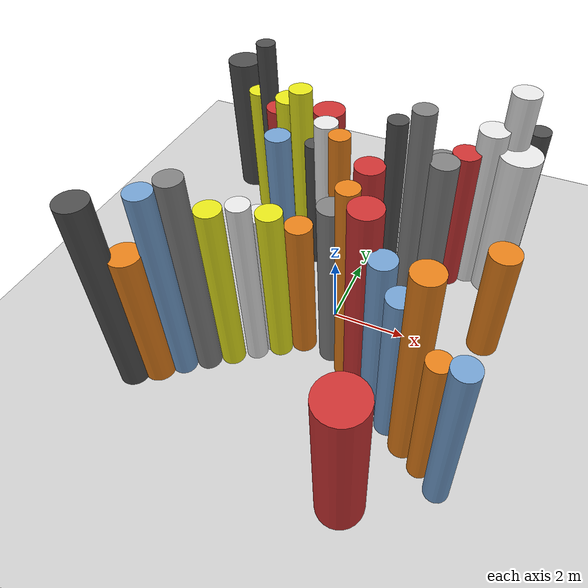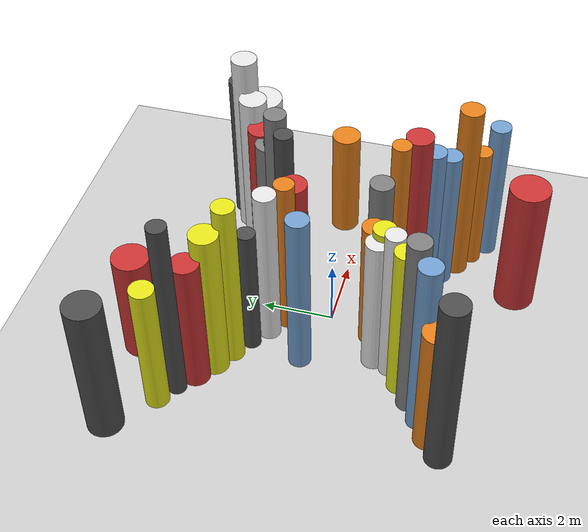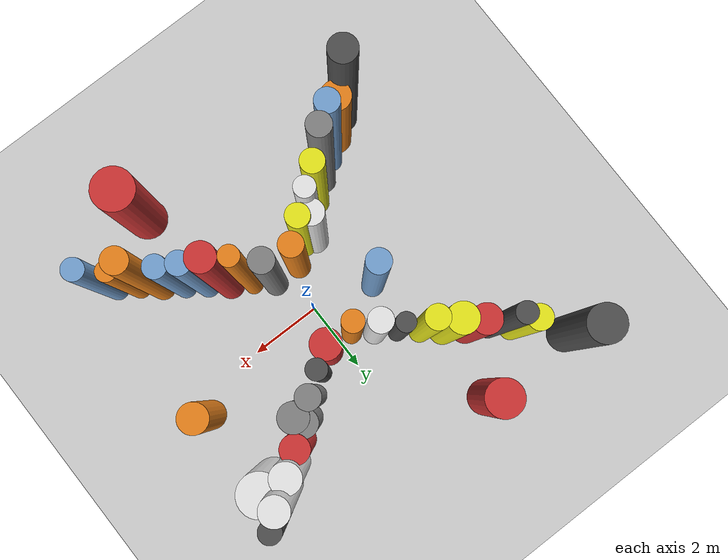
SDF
<?xml version='1.0'?>
<sdf version='1.6'>
  <world name='routeA_rl_v1__dense_recovery__rl_train__bottleneck_corridor__000071'>
    <!-- Sun light -->
    <light name='sun' type='directional'>
      <cast_shadows>1</cast_shadows>
      <pose>0 0 10 0 0 0</pose>
      <diffuse>0.8 0.8 0.8 1</diffuse>
      <specular>0.2 0.2 0.2 1</specular>
      <attenuation>
        <range>1000</range>
        <constant>0.9</constant>
        <linear>0.01</linear>
        <quadratic>0.001</quadratic>
      </attenuation>
      <direction>-0.5 0.1 -0.9</direction>
    </light>

    <!-- Ground plane -->
    <model name='ground_plane'>
      <static>1</static>
      <link name='link'>
        <collision name='collision'>
          <geometry>
            <plane>
              <normal>0 0 1</normal>
              <size>100 100</size>
            </plane>
          </geometry>
          <surface>
            <contact>
              <collide_bitmask>65535</collide_bitmask>
              <ode/>
            </contact>
            <friction>
              <ode>
                <mu>100</mu>
                <mu2>50</mu2>
              </ode>
              <torsional><ode/></torsional>
            </friction>
            <bounce/>
          </surface>
          <max_contacts>10</max_contacts>
        </collision>
        <visual name='visual'>
          <cast_shadows>0</cast_shadows>
          <geometry>
            <plane>
              <normal>0 0 1</normal>
              <size>100 100</size>
            </plane>
          </geometry>
          <material>
            <script>
              <uri>file://media/materials/scripts/gazebo.material</uri>
              <n>Gazebo/Grey</n>
            </script>
          </material>
        </visual>
      </link>
    </model>

    <!-- Environment -->
    <magnetic_field>6e-06 2.3e-05 -4.2e-05</magnetic_field>
    <atmosphere type='adiabatic'/>
    <physics name='default_physics' default='0' type='ode'>
      <gravity>0 0 -9.8</gravity>
      <max_step_size>0.004</max_step_size>
      <real_time_factor>1</real_time_factor>
      <real_time_update_rate>250</real_time_update_rate>
    </physics>
    <scene>
      <ambient>0.4 0.4 0.4 1</ambient>
      <background>0.7 0.7 0.7 1</background>
      <shadows>1</shadows>
    </scene>
    <wind/>
    <spherical_coordinates>
      <surface_model>EARTH_WGS84</surface_model>
      <latitude_deg>0</latitude_deg>
      <longitude_deg>0</longitude_deg>
      <elevation>0</elevation>
      <heading_deg>0</heading_deg>
    </spherical_coordinates>

    <!-- ============ OBSTACLES (40) ============ -->
    <model name='funnel_l_0'>
      <static>1</static>
      <link name='link'>
        <visual name='visual'>
          <geometry>
            <cylinder>
              <radius>0.3773</radius>
              <length>5.7128</length>
            </cylinder>
          </geometry>
          <material>
            <script>
              <n>Gazebo/DarkGrey</n>
              <uri>file://media/materials/scripts/gazebo.material</uri>
            </script>
            <ambient>0.3 0.3 0.3 1</ambient>
          </material>
        </visual>
        <collision name='collision'>
          <geometry>
            <cylinder>
              <radius>0.3773</radius>
              <length>5.7128</length>
            </cylinder>
          </geometry>
          <max_contacts>10</max_contacts>
          <surface>
            <contact><ode/></contact>
            <bounce/>
            <friction>
              <ode><mu>1</mu><mu2>1</mu2></ode>
              <torsional><ode/></torsional>
            </friction>
          </surface>
        </collision>
      </link>
      <pose>-4.0000 -3.8000 2.8564 0 0 0.0000</pose>
    </model>

    <model name='funnel_r_0'>
      <static>1</static>
      <link name='link'>
        <visual name='visual'>
          <geometry>
            <cylinder>
              <radius>0.3300</radius>
              <length>4.2214</length>
            </cylinder>
          </geometry>
          <material>
            <script>
              <n>Gazebo/Yellow</n>
              <uri>file://media/materials/scripts/gazebo.material</uri>
            </script>
            <ambient>0.9 0.9 0.1 1</ambient>
          </material>
        </visual>
        <collision name='collision'>
          <geometry>
            <cylinder>
              <radius>0.3300</radius>
              <length>4.2214</length>
            </cylinder>
          </geometry>
          <max_contacts>10</max_contacts>
          <surface>
            <contact><ode/></contact>
            <bounce/>
            <friction>
              <ode><mu>1</mu><mu2>1</mu2></ode>
              <torsional><ode/></torsional>
            </friction>
          </surface>
        </collision>
      </link>
      <pose>-4.0000 3.8000 2.1107 0 0 0.0000</pose>
    </model>

    <model name='funnel_l_1'>
      <static>1</static>
      <link name='link'>
        <visual name='visual'>
          <geometry>
            <cylinder>
              <radius>0.3960</radius>
              <length>4.1325</length>
            </cylinder>
          </geometry>
          <material>
            <script>
              <n>Gazebo/Orange</n>
              <uri>file://media/materials/scripts/gazebo.material</uri>
            </script>
            <ambient>0.9 0.5 0.1 1</ambient>
          </material>
        </visual>
        <collision name='collision'>
          <geometry>
            <cylinder>
              <radius>0.3960</radius>
              <length>4.1325</length>
            </cylinder>
          </geometry>
          <max_contacts>10</max_contacts>
          <surface>
            <contact><ode/></contact>
            <bounce/>
            <friction>
              <ode><mu>1</mu><mu2>1</mu2></ode>
              <torsional><ode/></torsional>
            </friction>
          </surface>
        </collision>
      </link>
      <pose>-3.4857 -3.4286 2.0663 0 0 0.0000</pose>
    </model>

    <model name='funnel_r_1'>
      <static>1</static>
      <link name='link'>
        <visual name='visual'>
          <geometry>
            <cylinder>
              <radius>0.2645</radius>
              <length>5.9287</length>
            </cylinder>
          </geometry>
          <material>
            <script>
              <n>Gazebo/DarkGrey</n>
              <uri>file://media/materials/scripts/gazebo.material</uri>
            </script>
            <ambient>0.3 0.3 0.3 1</ambient>
          </material>
        </visual>
        <collision name='collision'>
          <geometry>
            <cylinder>
              <radius>0.2645</radius>
              <length>5.9287</length>
            </cylinder>
          </geometry>
          <max_contacts>10</max_contacts>
          <surface>
            <contact><ode/></contact>
            <bounce/>
            <friction>
              <ode><mu>1</mu><mu2>1</mu2></ode>
              <torsional><ode/></torsional>
            </friction>
          </surface>
        </collision>
      </link>
      <pose>-3.4857 3.4286 2.9644 0 0 0.0000</pose>
    </model>

    <model name='funnel_l_2'>
      <static>1</static>
      <link name='link'>
        <visual name='visual'>
          <geometry>
            <cylinder>
              <radius>0.3158</radius>
              <length>5.7339</length>
            </cylinder>
          </geometry>
          <material>
            <script>
              <n>Gazebo/Blue</n>
              <uri>file://media/materials/scripts/gazebo.material</uri>
            </script>
            <ambient>0.447 0.624 0.812 1</ambient>
          </material>
        </visual>
        <collision name='collision'>
          <geometry>
            <cylinder>
              <radius>0.3158</radius>
              <length>5.7339</length>
            </cylinder>
          </geometry>
          <max_contacts>10</max_contacts>
          <surface>
            <contact><ode/></contact>
            <bounce/>
            <friction>
              <ode><mu>1</mu><mu2>1</mu2></ode>
              <torsional><ode/></torsional>
            </friction>
          </surface>
        </collision>
      </link>
      <pose>-2.9714 -3.0571 2.8669 0 0 0.0000</pose>
    </model>

    <model name='funnel_r_2'>
      <static>1</static>
      <link name='link'>
        <visual name='visual'>
          <geometry>
            <cylinder>
              <radius>0.3901</radius>
              <length>4.3050</length>
            </cylinder>
          </geometry>
          <material>
            <script>
              <n>Gazebo/Red</n>
              <uri>file://media/materials/scripts/gazebo.material</uri>
            </script>
            <ambient>0.8 0.2 0.2 1</ambient>
          </material>
        </visual>
        <collision name='collision'>
          <geometry>
            <cylinder>
              <radius>0.3901</radius>
              <length>4.3050</length>
            </cylinder>
          </geometry>
          <max_contacts>10</max_contacts>
          <surface>
            <contact><ode/></contact>
            <bounce/>
            <friction>
              <ode><mu>1</mu><mu2>1</mu2></ode>
              <torsional><ode/></torsional>
            </friction>
          </surface>
        </collision>
      </link>
      <pose>-2.9714 3.0571 2.1525 0 0 0.0000</pose>
    </model>

    <model name='funnel_l_3'>
      <static>1</static>
      <link name='link'>
        <visual name='visual'>
          <geometry>
            <cylinder>
              <radius>0.3139</radius>
              <length>5.9533</length>
            </cylinder>
          </geometry>
          <material>
            <script>
              <n>Gazebo/Grey</n>
              <uri>file://media/materials/scripts/gazebo.material</uri>
            </script>
            <ambient>0.5 0.5 0.5 1</ambient>
          </material>
        </visual>
        <collision name='collision'>
          <geometry>
            <cylinder>
              <radius>0.3139</radius>
              <length>5.9533</length>
            </cylinder>
          </geometry>
          <max_contacts>10</max_contacts>
          <surface>
            <contact><ode/></contact>
            <bounce/>
            <friction>
              <ode><mu>1</mu><mu2>1</mu2></ode>
              <torsional><ode/></torsional>
            </friction>
          </surface>
        </collision>
      </link>
      <pose>-2.4571 -2.6857 2.9767 0 0 0.0000</pose>
    </model>

    <model name='funnel_r_3'>
      <static>1</static>
      <link name='link'>
        <visual name='visual'>
          <geometry>
            <cylinder>
              <radius>0.3934</radius>
              <length>4.9109</length>
            </cylinder>
          </geometry>
          <material>
            <script>
              <n>Gazebo/Yellow</n>
              <uri>file://media/materials/scripts/gazebo.material</uri>
            </script>
            <ambient>0.9 0.9 0.1 1</ambient>
          </material>
        </visual>
        <collision name='collision'>
          <geometry>
            <cylinder>
              <radius>0.3934</radius>
              <length>4.9109</length>
            </cylinder>
          </geometry>
          <max_contacts>10</max_contacts>
          <surface>
            <contact><ode/></contact>
            <bounce/>
            <friction>
              <ode><mu>1</mu><mu2>1</mu2></ode>
              <torsional><ode/></torsional>
            </friction>
          </surface>
        </collision>
      </link>
      <pose>-2.4571 2.6857 2.4554 0 0 0.0000</pose>
    </model>

    <model name='funnel_l_4'>
      <static>1</static>
      <link name='link'>
        <visual name='visual'>
          <geometry>
            <cylinder>
              <radius>0.3107</radius>
              <length>5.0453</length>
            </cylinder>
          </geometry>
          <material>
            <script>
              <n>Gazebo/Yellow</n>
              <uri>file://media/materials/scripts/gazebo.material</uri>
            </script>
            <ambient>0.9 0.9 0.1 1</ambient>
          </material>
        </visual>
        <collision name='collision'>
          <geometry>
            <cylinder>
              <radius>0.3107</radius>
              <length>5.0453</length>
            </cylinder>
          </geometry>
          <max_contacts>10</max_contacts>
          <surface>
            <contact><ode/></contact>
            <bounce/>
            <friction>
              <ode><mu>1</mu><mu2>1</mu2></ode>
              <torsional><ode/></torsional>
            </friction>
          </surface>
        </collision>
      </link>
      <pose>-1.9429 -2.3143 2.5226 0 0 0.0000</pose>
    </model>

    <model name='funnel_r_4'>
      <static>1</static>
      <link name='link'>
        <visual name='visual'>
          <geometry>
            <cylinder>
              <radius>0.3090</radius>
              <length>5.4643</length>
            </cylinder>
          </geometry>
          <material>
            <script>
              <n>Gazebo/Yellow</n>
              <uri>file://media/materials/scripts/gazebo.material</uri>
            </script>
            <ambient>0.9 0.9 0.1 1</ambient>
          </material>
        </visual>
        <collision name='collision'>
          <geometry>
            <cylinder>
              <radius>0.3090</radius>
              <length>5.4643</length>
            </cylinder>
          </geometry>
          <max_contacts>10</max_contacts>
          <surface>
            <contact><ode/></contact>
            <bounce/>
            <friction>
              <ode><mu>1</mu><mu2>1</mu2></ode>
              <torsional><ode/></torsional>
            </friction>
          </surface>
        </collision>
      </link>
      <pose>-1.9429 2.3143 2.7322 0 0 0.0000</pose>
    </model>

    <model name='funnel_l_5'>
      <static>1</static>
      <link name='link'>
        <visual name='visual'>
          <geometry>
            <cylinder>
              <radius>0.2766</radius>
              <length>5.0536</length>
            </cylinder>
          </geometry>
          <material>
            <script>
              <n>Gazebo/White</n>
              <uri>file://media/materials/scripts/gazebo.material</uri>
            </script>
            <ambient>0.9 0.9 0.9 1</ambient>
          </material>
        </visual>
        <collision name='collision'>
          <geometry>
            <cylinder>
              <radius>0.2766</radius>
              <length>5.0536</length>
            </cylinder>
          </geometry>
          <max_contacts>10</max_contacts>
          <surface>
            <contact><ode/></contact>
            <bounce/>
            <friction>
              <ode><mu>1</mu><mu2>1</mu2></ode>
              <torsional><ode/></torsional>
            </friction>
          </surface>
        </collision>
      </link>
      <pose>-1.4286 -1.9429 2.5268 0 0 0.0000</pose>
    </model>

    <model name='funnel_r_5'>
      <static>1</static>
      <link name='link'>
        <visual name='visual'>
          <geometry>
            <cylinder>
              <radius>0.2565</radius>
              <length>4.1747</length>
            </cylinder>
          </geometry>
          <material>
            <script>
              <n>Gazebo/DarkGrey</n>
              <uri>file://media/materials/scripts/gazebo.material</uri>
            </script>
            <ambient>0.3 0.3 0.3 1</ambient>
          </material>
        </visual>
        <collision name='collision'>
          <geometry>
            <cylinder>
              <radius>0.2565</radius>
              <length>4.1747</length>
            </cylinder>
          </geometry>
          <max_contacts>10</max_contacts>
          <surface>
            <contact><ode/></contact>
            <bounce/>
            <friction>
              <ode><mu>1</mu><mu2>1</mu2></ode>
              <torsional><ode/></torsional>
            </friction>
          </surface>
        </collision>
      </link>
      <pose>-1.4286 1.9429 2.0874 0 0 0.0000</pose>
    </model>

    <model name='funnel_l_6'>
      <static>1</static>
      <link name='link'>
        <visual name='visual'>
          <geometry>
            <cylinder>
              <radius>0.3117</radius>
              <length>4.7024</length>
            </cylinder>
          </geometry>
          <material>
            <script>
              <n>Gazebo/Yellow</n>
              <uri>file://media/materials/scripts/gazebo.material</uri>
            </script>
            <ambient>0.9 0.9 0.1 1</ambient>
          </material>
        </visual>
        <collision name='collision'>
          <geometry>
            <cylinder>
              <radius>0.3117</radius>
              <length>4.7024</length>
            </cylinder>
          </geometry>
          <max_contacts>10</max_contacts>
          <surface>
            <contact><ode/></contact>
            <bounce/>
            <friction>
              <ode><mu>1</mu><mu2>1</mu2></ode>
              <torsional><ode/></torsional>
            </friction>
          </surface>
        </collision>
      </link>
      <pose>-0.9143 -1.5714 2.3512 0 0 0.0000</pose>
    </model>

    <model name='funnel_r_6'>
      <static>1</static>
      <link name='link'>
        <visual name='visual'>
          <geometry>
            <cylinder>
              <radius>0.3139</radius>
              <length>5.1457</length>
            </cylinder>
          </geometry>
          <material>
            <script>
              <n>Gazebo/White</n>
              <uri>file://media/materials/scripts/gazebo.material</uri>
            </script>
            <ambient>0.9 0.9 0.9 1</ambient>
          </material>
        </visual>
        <collision name='collision'>
          <geometry>
            <cylinder>
              <radius>0.3139</radius>
              <length>5.1457</length>
            </cylinder>
          </geometry>
          <max_contacts>10</max_contacts>
          <surface>
            <contact><ode/></contact>
            <bounce/>
            <friction>
              <ode><mu>1</mu><mu2>1</mu2></ode>
              <torsional><ode/></torsional>
            </friction>
          </surface>
        </collision>
      </link>
      <pose>-0.9143 1.5714 2.5729 0 0 0.0000</pose>
    </model>

    <model name='funnel_l_7'>
      <static>1</static>
      <link name='link'>
        <visual name='visual'>
          <geometry>
            <cylinder>
              <radius>0.3278</radius>
              <length>4.2152</length>
            </cylinder>
          </geometry>
          <material>
            <script>
              <n>Gazebo/Orange</n>
              <uri>file://media/materials/scripts/gazebo.material</uri>
            </script>
            <ambient>0.9 0.5 0.1 1</ambient>
          </material>
        </visual>
        <collision name='collision'>
          <geometry>
            <cylinder>
              <radius>0.3278</radius>
              <length>4.2152</length>
            </cylinder>
          </geometry>
          <max_contacts>10</max_contacts>
          <surface>
            <contact><ode/></contact>
            <bounce/>
            <friction>
              <ode><mu>1</mu><mu2>1</mu2></ode>
              <torsional><ode/></torsional>
            </friction>
          </surface>
        </collision>
      </link>
      <pose>-0.4000 -1.2000 2.1076 0 0 0.0000</pose>
    </model>

    <model name='funnel_r_7'>
      <static>1</static>
      <link name='link'>
        <visual name='visual'>
          <geometry>
            <cylinder>
              <radius>0.2816</radius>
              <length>5.1369</length>
            </cylinder>
          </geometry>
          <material>
            <script>
              <n>Gazebo/Orange</n>
              <uri>file://media/materials/scripts/gazebo.material</uri>
            </script>
            <ambient>0.9 0.5 0.1 1</ambient>
          </material>
        </visual>
        <collision name='collision'>
          <geometry>
            <cylinder>
              <radius>0.2816</radius>
              <length>5.1369</length>
            </cylinder>
          </geometry>
          <max_contacts>10</max_contacts>
          <surface>
            <contact><ode/></contact>
            <bounce/>
            <friction>
              <ode><mu>1</mu><mu2>1</mu2></ode>
              <torsional><ode/></torsional>
            </friction>
          </surface>
        </collision>
      </link>
      <pose>-0.4000 1.2000 2.5685 0 0 0.0000</pose>
    </model>

    <model name='funnel_out_l_0'>
      <static>1</static>
      <link name='link'>
        <visual name='visual'>
          <geometry>
            <cylinder>
              <radius>0.3278</radius>
              <length>5.0183</length>
            </cylinder>
          </geometry>
          <material>
            <script>
              <n>Gazebo/Grey</n>
              <uri>file://media/materials/scripts/gazebo.material</uri>
            </script>
            <ambient>0.5 0.5 0.5 1</ambient>
          </material>
        </visual>
        <collision name='collision'>
          <geometry>
            <cylinder>
              <radius>0.3278</radius>
              <length>5.0183</length>
            </cylinder>
          </geometry>
          <max_contacts>10</max_contacts>
          <surface>
            <contact><ode/></contact>
            <bounce/>
            <friction>
              <ode><mu>1</mu><mu2>1</mu2></ode>
              <torsional><ode/></torsional>
            </friction>
          </surface>
        </collision>
      </link>
      <pose>0.4000 -1.2000 2.5092 0 0 0.0000</pose>
    </model>

    <model name='funnel_out_r_0'>
      <static>1</static>
      <link name='link'>
        <visual name='visual'>
          <geometry>
            <cylinder>
              <radius>0.3974</radius>
              <length>4.4600</length>
            </cylinder>
          </geometry>
          <material>
            <script>
              <n>Gazebo/Red</n>
              <uri>file://media/materials/scripts/gazebo.material</uri>
            </script>
            <ambient>0.8 0.2 0.2 1</ambient>
          </material>
        </visual>
        <collision name='collision'>
          <geometry>
            <cylinder>
              <radius>0.3974</radius>
              <length>4.4600</length>
            </cylinder>
          </geometry>
          <max_contacts>10</max_contacts>
          <surface>
            <contact><ode/></contact>
            <bounce/>
            <friction>
              <ode><mu>1</mu><mu2>1</mu2></ode>
              <torsional><ode/></torsional>
            </friction>
          </surface>
        </collision>
      </link>
      <pose>0.4000 1.2000 2.2300 0 0 0.0000</pose>
    </model>

    <model name='funnel_out_l_1'>
      <static>1</static>
      <link name='link'>
        <visual name='visual'>
          <geometry>
            <cylinder>
              <radius>0.2605</radius>
              <length>5.9333</length>
            </cylinder>
          </geometry>
          <material>
            <script>
              <n>Gazebo/Orange</n>
              <uri>file://media/materials/scripts/gazebo.material</uri>
            </script>
            <ambient>0.9 0.5 0.1 1</ambient>
          </material>
        </visual>
        <collision name='collision'>
          <geometry>
            <cylinder>
              <radius>0.2605</radius>
              <length>5.9333</length>
            </cylinder>
          </geometry>
          <max_contacts>10</max_contacts>
          <surface>
            <contact><ode/></contact>
            <bounce/>
            <friction>
              <ode><mu>1</mu><mu2>1</mu2></ode>
              <torsional><ode/></torsional>
            </friction>
          </surface>
        </collision>
      </link>
      <pose>0.9143 -1.5714 2.9666 0 0 0.0000</pose>
    </model>

    <model name='funnel_out_r_1'>
      <static>1</static>
      <link name='link'>
        <visual name='visual'>
          <geometry>
            <cylinder>
              <radius>0.2606</radius>
              <length>5.6619</length>
            </cylinder>
          </geometry>
          <material>
            <script>
              <n>Gazebo/DarkGrey</n>
              <uri>file://media/materials/scripts/gazebo.material</uri>
            </script>
            <ambient>0.3 0.3 0.3 1</ambient>
          </material>
        </visual>
        <collision name='collision'>
          <geometry>
            <cylinder>
              <radius>0.2606</radius>
              <length>5.6619</length>
            </cylinder>
          </geometry>
          <max_contacts>10</max_contacts>
          <surface>
            <contact><ode/></contact>
            <bounce/>
            <friction>
              <ode><mu>1</mu><mu2>1</mu2></ode>
              <torsional><ode/></torsional>
            </friction>
          </surface>
        </collision>
      </link>
      <pose>0.9143 1.5714 2.8310 0 0 0.0000</pose>
    </model>

    <model name='funnel_out_l_2'>
      <static>1</static>
      <link name='link'>
        <visual name='visual'>
          <geometry>
            <cylinder>
              <radius>0.3721</radius>
              <length>5.8837</length>
            </cylinder>
          </geometry>
          <material>
            <script>
              <n>Gazebo/Red</n>
              <uri>file://media/materials/scripts/gazebo.material</uri>
            </script>
            <ambient>0.8 0.2 0.2 1</ambient>
          </material>
        </visual>
        <collision name='collision'>
          <geometry>
            <cylinder>
              <radius>0.3721</radius>
              <length>5.8837</length>
            </cylinder>
          </geometry>
          <max_contacts>10</max_contacts>
          <surface>
            <contact><ode/></contact>
            <bounce/>
            <friction>
              <ode><mu>1</mu><mu2>1</mu2></ode>
              <torsional><ode/></torsional>
            </friction>
          </surface>
        </collision>
      </link>
      <pose>1.4286 -1.9429 2.9419 0 0 0.0000</pose>
    </model>

    <model name='funnel_out_r_2'>
      <static>1</static>
      <link name='link'>
        <visual name='visual'>
          <geometry>
            <cylinder>
              <radius>0.3056</radius>
              <length>5.8558</length>
            </cylinder>
          </geometry>
          <material>
            <script>
              <n>Gazebo/Grey</n>
              <uri>file://media/materials/scripts/gazebo.material</uri>
            </script>
            <ambient>0.5 0.5 0.5 1</ambient>
          </material>
        </visual>
        <collision name='collision'>
          <geometry>
            <cylinder>
              <radius>0.3056</radius>
              <length>5.8558</length>
            </cylinder>
          </geometry>
          <max_contacts>10</max_contacts>
          <surface>
            <contact><ode/></contact>
            <bounce/>
            <friction>
              <ode><mu>1</mu><mu2>1</mu2></ode>
              <torsional><ode/></torsional>
            </friction>
          </surface>
        </collision>
      </link>
      <pose>1.4286 1.9429 2.9279 0 0 0.0000</pose>
    </model>

    <model name='funnel_out_l_3'>
      <static>1</static>
      <link name='link'>
        <visual name='visual'>
          <geometry>
            <cylinder>
              <radius>0.3081</radius>
              <length>5.0582</length>
            </cylinder>
          </geometry>
          <material>
            <script>
              <n>Gazebo/Blue</n>
              <uri>file://media/materials/scripts/gazebo.material</uri>
            </script>
            <ambient>0.447 0.624 0.812 1</ambient>
          </material>
        </visual>
        <collision name='collision'>
          <geometry>
            <cylinder>
              <radius>0.3081</radius>
              <length>5.0582</length>
            </cylinder>
          </geometry>
          <max_contacts>10</max_contacts>
          <surface>
            <contact><ode/></contact>
            <bounce/>
            <friction>
              <ode><mu>1</mu><mu2>1</mu2></ode>
              <torsional><ode/></torsional>
            </friction>
          </surface>
        </collision>
      </link>
      <pose>1.9429 -2.3143 2.5291 0 0 0.0000</pose>
    </model>

    <model name='funnel_out_r_3'>
      <static>1</static>
      <link name='link'>
        <visual name='visual'>
          <geometry>
            <cylinder>
              <radius>0.3778</radius>
              <length>4.3889</length>
            </cylinder>
          </geometry>
          <material>
            <script>
              <n>Gazebo/Grey</n>
              <uri>file://media/materials/scripts/gazebo.material</uri>
            </script>
            <ambient>0.5 0.5 0.5 1</ambient>
          </material>
        </visual>
        <collision name='collision'>
          <geometry>
            <cylinder>
              <radius>0.3778</radius>
              <length>4.3889</length>
            </cylinder>
          </geometry>
          <max_contacts>10</max_contacts>
          <surface>
            <contact><ode/></contact>
            <bounce/>
            <friction>
              <ode><mu>1</mu><mu2>1</mu2></ode>
              <torsional><ode/></torsional>
            </friction>
          </surface>
        </collision>
      </link>
      <pose>1.9429 2.3143 2.1945 0 0 0.0000</pose>
    </model>

    <model name='funnel_out_l_4'>
      <static>1</static>
      <link name='link'>
        <visual name='visual'>
          <geometry>
            <cylinder>
              <radius>0.3052</radius>
              <length>4.5906</length>
            </cylinder>
          </geometry>
          <material>
            <script>
              <n>Gazebo/Blue</n>
              <uri>file://media/materials/scripts/gazebo.material</uri>
            </script>
            <ambient>0.447 0.624 0.812 1</ambient>
          </material>
        </visual>
        <collision name='collision'>
          <geometry>
            <cylinder>
              <radius>0.3052</radius>
              <length>4.5906</length>
            </cylinder>
          </geometry>
          <max_contacts>10</max_contacts>
          <surface>
            <contact><ode/></contact>
            <bounce/>
            <friction>
              <ode><mu>1</mu><mu2>1</mu2></ode>
              <torsional><ode/></torsional>
            </friction>
          </surface>
        </collision>
      </link>
      <pose>2.4571 -2.6857 2.2953 0 0 0.0000</pose>
    </model>

    <model name='funnel_out_r_4'>
      <static>1</static>
      <link name='link'>
        <visual name='visual'>
          <geometry>
            <cylinder>
              <radius>0.3724</radius>
              <length>4.4458</length>
            </cylinder>
          </geometry>
          <material>
            <script>
              <n>Gazebo/Red</n>
              <uri>file://media/materials/scripts/gazebo.material</uri>
            </script>
            <ambient>0.8 0.2 0.2 1</ambient>
          </material>
        </visual>
        <collision name='collision'>
          <geometry>
            <cylinder>
              <radius>0.3724</radius>
              <length>4.4458</length>
            </cylinder>
          </geometry>
          <max_contacts>10</max_contacts>
          <surface>
            <contact><ode/></contact>
            <bounce/>
            <friction>
              <ode><mu>1</mu><mu2>1</mu2></ode>
              <torsional><ode/></torsional>
            </friction>
          </surface>
        </collision>
      </link>
      <pose>2.4571 2.6857 2.2229 0 0 0.0000</pose>
    </model>

    <model name='funnel_out_l_5'>
      <static>1</static>
      <link name='link'>
        <visual name='visual'>
          <geometry>
            <cylinder>
              <radius>0.3335</radius>
              <length>5.8292</length>
            </cylinder>
          </geometry>
          <material>
            <script>
              <n>Gazebo/Orange</n>
              <uri>file://media/materials/scripts/gazebo.material</uri>
            </script>
            <ambient>0.9 0.5 0.1 1</ambient>
          </material>
        </visual>
        <collision name='collision'>
          <geometry>
            <cylinder>
              <radius>0.3335</radius>
              <length>5.8292</length>
            </cylinder>
          </geometry>
          <max_contacts>10</max_contacts>
          <surface>
            <contact><ode/></contact>
            <bounce/>
            <friction>
              <ode><mu>1</mu><mu2>1</mu2></ode>
              <torsional><ode/></torsional>
            </friction>
          </surface>
        </collision>
      </link>
      <pose>2.9714 -3.0571 2.9146 0 0 0.0000</pose>
    </model>

    <model name='funnel_out_r_5'>
      <static>1</static>
      <link name='link'>
        <visual name='visual'>
          <geometry>
            <cylinder>
              <radius>0.3915</radius>
              <length>5.0272</length>
            </cylinder>
          </geometry>
          <material>
            <script>
              <n>Gazebo/White</n>
              <uri>file://media/materials/scripts/gazebo.material</uri>
            </script>
            <ambient>0.9 0.9 0.9 1</ambient>
          </material>
        </visual>
        <collision name='collision'>
          <geometry>
            <cylinder>
              <radius>0.3915</radius>
              <length>5.0272</length>
            </cylinder>
          </geometry>
          <max_contacts>10</max_contacts>
          <surface>
            <contact><ode/></contact>
            <bounce/>
            <friction>
              <ode><mu>1</mu><mu2>1</mu2></ode>
              <torsional><ode/></torsional>
            </friction>
          </surface>
        </collision>
      </link>
      <pose>2.9714 3.0571 2.5136 0 0 0.0000</pose>
    </model>

    <model name='funnel_out_l_6'>
      <static>1</static>
      <link name='link'>
        <visual name='visual'>
          <geometry>
            <cylinder>
              <radius>0.2699</radius>
              <length>4.0608</length>
            </cylinder>
          </geometry>
          <material>
            <script>
              <n>Gazebo/Orange</n>
              <uri>file://media/materials/scripts/gazebo.material</uri>
            </script>
            <ambient>0.9 0.5 0.1 1</ambient>
          </material>
        </visual>
        <collision name='collision'>
          <geometry>
            <cylinder>
              <radius>0.2699</radius>
              <length>4.0608</length>
            </cylinder>
          </geometry>
          <max_contacts>10</max_contacts>
          <surface>
            <contact><ode/></contact>
            <bounce/>
            <friction>
              <ode><mu>1</mu><mu2>1</mu2></ode>
              <torsional><ode/></torsional>
            </friction>
          </surface>
        </collision>
      </link>
      <pose>3.4857 -3.4286 2.0304 0 0 0.0000</pose>
    </model>

    <model name='funnel_out_r_6'>
      <static>1</static>
      <link name='link'>
        <visual name='visual'>
          <geometry>
            <cylinder>
              <radius>0.3660</radius>
              <length>5.9683</length>
            </cylinder>
          </geometry>
          <material>
            <script>
              <n>Gazebo/White</n>
              <uri>file://media/materials/scripts/gazebo.material</uri>
            </script>
            <ambient>0.9 0.9 0.9 1</ambient>
          </material>
        </visual>
        <collision name='collision'>
          <geometry>
            <cylinder>
              <radius>0.3660</radius>
              <length>5.9683</length>
            </cylinder>
          </geometry>
          <max_contacts>10</max_contacts>
          <surface>
            <contact><ode/></contact>
            <bounce/>
            <friction>
              <ode><mu>1</mu><mu2>1</mu2></ode>
              <torsional><ode/></torsional>
            </friction>
          </surface>
        </collision>
      </link>
      <pose>3.4857 3.4286 2.9842 0 0 0.0000</pose>
    </model>

    <model name='funnel_out_l_7'>
      <static>1</static>
      <link name='link'>
        <visual name='visual'>
          <geometry>
            <cylinder>
              <radius>0.2942</radius>
              <length>4.6103</length>
            </cylinder>
          </geometry>
          <material>
            <script>
              <n>Gazebo/Blue</n>
              <uri>file://media/materials/scripts/gazebo.material</uri>
            </script>
            <ambient>0.447 0.624 0.812 1</ambient>
          </material>
        </visual>
        <collision name='collision'>
          <geometry>
            <cylinder>
              <radius>0.2942</radius>
              <length>4.6103</length>
            </cylinder>
          </geometry>
          <max_contacts>10</max_contacts>
          <surface>
            <contact><ode/></contact>
            <bounce/>
            <friction>
              <ode><mu>1</mu><mu2>1</mu2></ode>
              <torsional><ode/></torsional>
            </friction>
          </surface>
        </collision>
      </link>
      <pose>4.0000 -3.8000 2.3052 0 0 0.0000</pose>
    </model>

    <model name='funnel_out_r_7'>
      <static>1</static>
      <link name='link'>
        <visual name='visual'>
          <geometry>
            <cylinder>
              <radius>0.2912</radius>
              <length>4.7979</length>
            </cylinder>
          </geometry>
          <material>
            <script>
              <n>Gazebo/DarkGrey</n>
              <uri>file://media/materials/scripts/gazebo.material</uri>
            </script>
            <ambient>0.3 0.3 0.3 1</ambient>
          </material>
        </visual>
        <collision name='collision'>
          <geometry>
            <cylinder>
              <radius>0.2912</radius>
              <length>4.7979</length>
            </cylinder>
          </geometry>
          <max_contacts>10</max_contacts>
          <surface>
            <contact><ode/></contact>
            <bounce/>
            <friction>
              <ode><mu>1</mu><mu2>1</mu2></ode>
              <torsional><ode/></torsional>
            </friction>
          </surface>
        </collision>
      </link>
      <pose>4.0000 3.8000 2.3990 0 0 0.0000</pose>
    </model>

    <model name='bn_scatter_0'>
      <static>1</static>
      <link name='link'>
        <visual name='visual'>
          <geometry>
            <cylinder>
              <radius>0.5676</radius>
              <length>4.1598</length>
            </cylinder>
          </geometry>
          <material>
            <script>
              <n>Gazebo/Red</n>
              <uri>file://media/materials/scripts/gazebo.material</uri>
            </script>
            <ambient>0.8 0.2 0.2 1</ambient>
          </material>
        </visual>
        <collision name='collision'>
          <geometry>
            <cylinder>
              <radius>0.5676</radius>
              <length>4.1598</length>
            </cylinder>
          </geometry>
          <max_contacts>10</max_contacts>
          <surface>
            <contact><ode/></contact>
            <bounce/>
            <friction>
              <ode><mu>1</mu><mu2>1</mu2></ode>
              <torsional><ode/></torsional>
            </friction>
          </surface>
        </collision>
      </link>
      <pose>2.1566 -4.8989 2.0799 0 0 0.0000</pose>
    </model>

    <model name='bn_scatter_1'>
      <static>1</static>
      <link name='link'>
        <visual name='visual'>
          <geometry>
            <cylinder>
              <radius>0.5519</radius>
              <length>4.5286</length>
            </cylinder>
          </geometry>
          <material>
            <script>
              <n>Gazebo/White</n>
              <uri>file://media/materials/scripts/gazebo.material</uri>
            </script>
            <ambient>0.9 0.9 0.9 1</ambient>
          </material>
        </visual>
        <collision name='collision'>
          <geometry>
            <cylinder>
              <radius>0.5519</radius>
              <length>4.5286</length>
            </cylinder>
          </geometry>
          <max_contacts>10</max_contacts>
          <surface>
            <contact><ode/></contact>
            <bounce/>
            <friction>
              <ode><mu>1</mu><mu2>1</mu2></ode>
              <torsional><ode/></torsional>
            </friction>
          </surface>
        </collision>
      </link>
      <pose>3.7273 2.9987 2.2643 0 0 0.0000</pose>
    </model>

    <model name='bn_scatter_2'>
      <static>1</static>
      <link name='link'>
        <visual name='visual'>
          <geometry>
            <cylinder>
              <radius>0.3403</radius>
              <length>4.4956</length>
            </cylinder>
          </geometry>
          <material>
            <script>
              <n>Gazebo/White</n>
              <uri>file://media/materials/scripts/gazebo.material</uri>
            </script>
            <ambient>0.9 0.9 0.9 1</ambient>
          </material>
        </visual>
        <collision name='collision'>
          <geometry>
            <cylinder>
              <radius>0.3403</radius>
              <length>4.4956</length>
            </cylinder>
          </geometry>
          <max_contacts>10</max_contacts>
          <surface>
            <contact><ode/></contact>
            <bounce/>
            <friction>
              <ode><mu>1</mu><mu2>1</mu2></ode>
              <torsional><ode/></torsional>
            </friction>
          </surface>
        </collision>
      </link>
      <pose>-1.2300 -1.4786 2.2478 0 0 0.0000</pose>
    </model>

    <model name='bn_scatter_3'>
      <static>1</static>
      <link name='link'>
        <visual name='visual'>
          <geometry>
            <cylinder>
              <radius>0.4101</radius>
              <length>3.4087</length>
            </cylinder>
          </geometry>
          <material>
            <script>
              <n>Gazebo/Orange</n>
              <uri>file://media/materials/scripts/gazebo.material</uri>
            </script>
            <ambient>0.9 0.5 0.1 1</ambient>
          </material>
        </visual>
        <collision name='collision'>
          <geometry>
            <cylinder>
              <radius>0.4101</radius>
              <length>3.4087</length>
            </cylinder>
          </geometry>
          <max_contacts>10</max_contacts>
          <surface>
            <contact><ode/></contact>
            <bounce/>
            <friction>
              <ode><mu>1</mu><mu2>1</mu2></ode>
              <torsional><ode/></torsional>
            </friction>
          </surface>
        </collision>
      </link>
      <pose>4.0384 0.5936 1.7043 0 0 0.0000</pose>
    </model>

    <model name='bn_scatter_4'>
      <static>1</static>
      <link name='link'>
        <visual name='visual'>
          <geometry>
            <cylinder>
              <radius>0.5126</radius>
              <length>3.3843</length>
            </cylinder>
          </geometry>
          <material>
            <script>
              <n>Gazebo/Red</n>
              <uri>file://media/materials/scripts/gazebo.material</uri>
            </script>
            <ambient>0.8 0.2 0.2 1</ambient>
          </material>
        </visual>
        <collision name='collision'>
          <geometry>
            <cylinder>
              <radius>0.5126</radius>
              <length>3.3843</length>
            </cylinder>
          </geometry>
          <max_contacts>10</max_contacts>
          <surface>
            <contact><ode/></contact>
            <bounce/>
            <friction>
              <ode><mu>1</mu><mu2>1</mu2></ode>
              <torsional><ode/></torsional>
            </friction>
          </surface>
        </collision>
      </link>
      <pose>-2.2505 4.8687 1.6922 0 0 0.0000</pose>
    </model>

    <model name='bn_scatter_5'>
      <static>1</static>
      <link name='link'>
        <visual name='visual'>
          <geometry>
            <cylinder>
              <radius>0.3894</radius>
              <length>4.4532</length>
            </cylinder>
          </geometry>
          <material>
            <script>
              <n>Gazebo/Grey</n>
              <uri>file://media/materials/scripts/gazebo.material</uri>
            </script>
            <ambient>0.5 0.5 0.5 1</ambient>
          </material>
        </visual>
        <collision name='collision'>
          <geometry>
            <cylinder>
              <radius>0.3894</radius>
              <length>4.4532</length>
            </cylinder>
          </geometry>
          <max_contacts>10</max_contacts>
          <surface>
            <contact><ode/></contact>
            <bounce/>
            <friction>
              <ode><mu>1</mu><mu2>1</mu2></ode>
              <torsional><ode/></torsional>
            </friction>
          </surface>
        </collision>
      </link>
      <pose>2.0385 2.0836 2.2266 0 0 0.0000</pose>
    </model>

    <model name='bn_scatter_6'>
      <static>1</static>
      <link name='link'>
        <visual name='visual'>
          <geometry>
            <cylinder>
              <radius>0.4991</radius>
              <length>4.4947</length>
            </cylinder>
          </geometry>
          <material>
            <script>
              <n>Gazebo/DarkGrey</n>
              <uri>file://media/materials/scripts/gazebo.material</uri>
            </script>
            <ambient>0.3 0.3 0.3 1</ambient>
          </material>
        </visual>
        <collision name='collision'>
          <geometry>
            <cylinder>
              <radius>0.4991</radius>
              <length>4.4947</length>
            </cylinder>
          </geometry>
          <max_contacts>10</max_contacts>
          <surface>
            <contact><ode/></contact>
            <bounce/>
            <friction>
              <ode><mu>1</mu><mu2>1</mu2></ode>
              <torsional><ode/></torsional>
            </friction>
          </surface>
        </collision>
      </link>
      <pose>-5.0818 4.8544 2.2473 0 0 0.0000</pose>
    </model>

    <model name='bn_scatter_7'>
      <static>1</static>
      <link name='link'>
        <visual name='visual'>
          <geometry>
            <cylinder>
              <radius>0.3164</radius>
              <length>5.2312</length>
            </cylinder>
          </geometry>
          <material>
            <script>
              <n>Gazebo/Blue</n>
              <uri>file://media/materials/scripts/gazebo.material</uri>
            </script>
            <ambient>0.447 0.624 0.812 1</ambient>
          </material>
        </visual>
        <collision name='collision'>
          <geometry>
            <cylinder>
              <radius>0.3164</radius>
              <length>5.2312</length>
            </cylinder>
          </geometry>
          <max_contacts>10</max_contacts>
          <surface>
            <contact><ode/></contact>
            <bounce/>
            <friction>
              <ode><mu>1</mu><mu2>1</mu2></ode>
              <torsional><ode/></torsional>
            </friction>
          </surface>
        </collision>
      </link>
      <pose>-1.6976 0.4899 2.6156 0 0 0.0000</pose>
    </model>

    <!-- GUI camera -->
    <gui fullscreen='0'>
      <camera name='user_camera'>
        <pose>-15 0 18 0 0.85 0.15</pose>
        <view_controller>orbit</view_controller>
        <projection_type>perspective</projection_type>
      </camera>
    </gui>
  </world>
</sdf>
